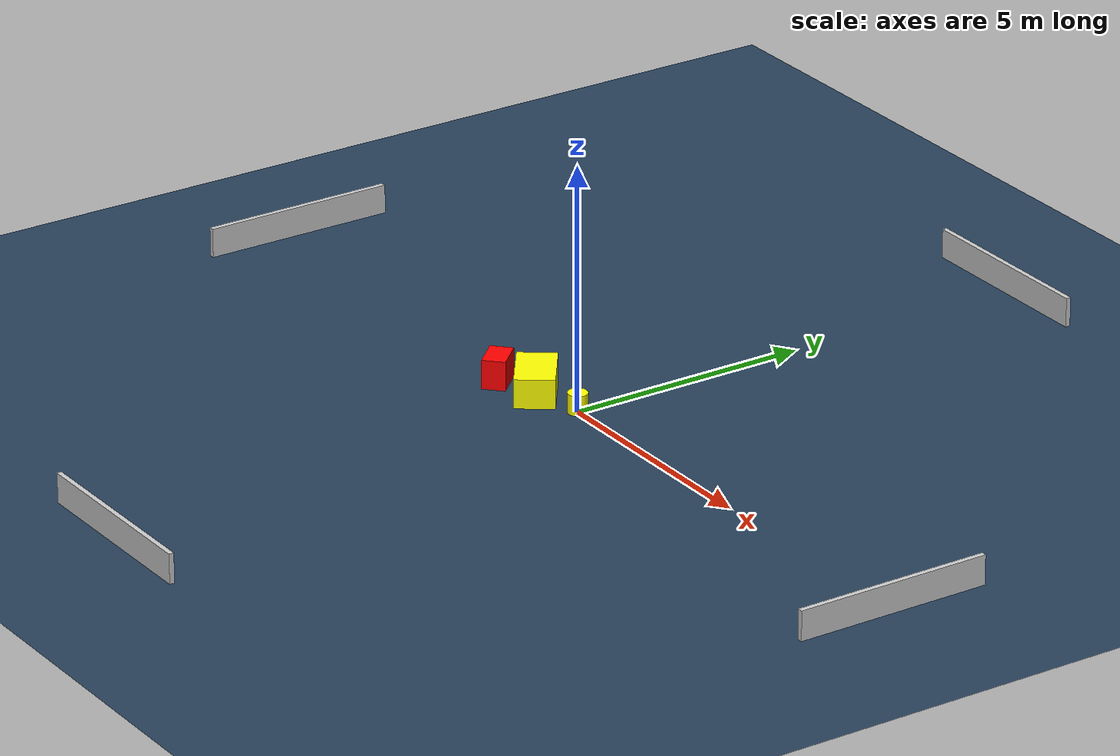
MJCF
<?xml version="1.0" ?>
<mujoco model="generated_environment">
  <option timestep="0.01" integrator="RK4" cone="elliptic"/>
  <default>
    <geom density="1"/>
  </default>
  <asset>
    <texture builtin="gradient" height="3072" name="skybox" rgb1="0.3 0.5 0.7" rgb2="0 0 0" type="skybox" width="512"/>
    <texture builtin="checker" height="300" name="groundplane" rgb1="0.2 0.3 0.4" rgb2="0.1 0.2 0.3" type="2d" width="300"/>
    <material name="groundplane" reflectance="0.2" texrepeat="5 5" texture="groundplane"/>
  </asset>
  <worldbody>
    <light dir="0 0 -1" directional="true" pos="0 0 1.5"/>
    <geom condim="3" friction="0.5 0.005 0.001" material="groundplane" name="floor" pos="0 0 0" size="0 0 0.05" type="plane"/>
    <body name="walls">
      <geom name="wall_1" condim="4" pos="-10.0 0.0 0.3" rgba="0.800000011920929 0.800000011920929 0.800000011920929 1.0" size="0.05 2.0 0.3" type="box"/>
      <geom name="wall_2" condim="4" pos="10.0 0.0 0.3" rgba="0.800000011920929 0.800000011920929 0.800000011920929 1.0" size="0.05 2.0 0.3" type="box"/>
      <geom name="wall_3" condim="4" pos="0.0 -10.0 0.3" rgba="0.800000011920929 0.800000011920929 0.800000011920929 1.0" size="2.0 0.05 0.3" type="box"/>
      <geom name="wall_4" condim="4" pos="0.0 10.0 0.3" rgba="0.800000011920929 0.800000011920929 0.800000011920929 1.0" size="2.0 0.05 0.3" type="box"/>
    </body>
    <body name="robot">
      <joint name="joint_x" type="slide" pos="0 0 0" axis="1 0 0"/>
      <joint name="joint_y" type="slide" pos="0 0 0" axis="0 1 0"/>
      <geom name="robot" type="cylinder" pos="0.0 0.0 0.2" size="0.2 0.2 0.0" mass="5.0" friction="1.0 0.005 0.0001" condim="4" rgba="1.0 1.0 0.0 1.0"/>
    </body>
    <body name="obstacle_1_movable">
      <geom name="obstacle_1_movable" condim="4" pos="-1.0569668530721528 -0.24399301781944277 0.3" euler="0 0 54.22204133339801" friction="0.0 0.005 0.001" rgba="1.0 1.0 0.0 1.0" size="0.3956627498995342 0.6231446522666748 0.3" type="box" mass="0.1"/>
      <joint type="free"/>
    </body>
    <body name="obstacle_2_static">
      <geom name="obstacle_2_static" condim="4" pos="-1.9166861642099482 -0.5414274195285358 0.3" euler="0 0 133.3630875201989" friction="0.0 0.005 0.001" rgba="1.0 0.0 0.0 1.0" size="0.34287509837902963 0.2324777718007637 0.3" type="box"/>
    </body>
  </worldbody>
  <actuator>
    <motor name="actuator_x" joint="joint_x" gear="1" ctrlrange="-1 1"/>
    <motor name="actuator_y" joint="joint_y" gear="1" ctrlrange="-1 1"/>
  </actuator>
</mujoco>
